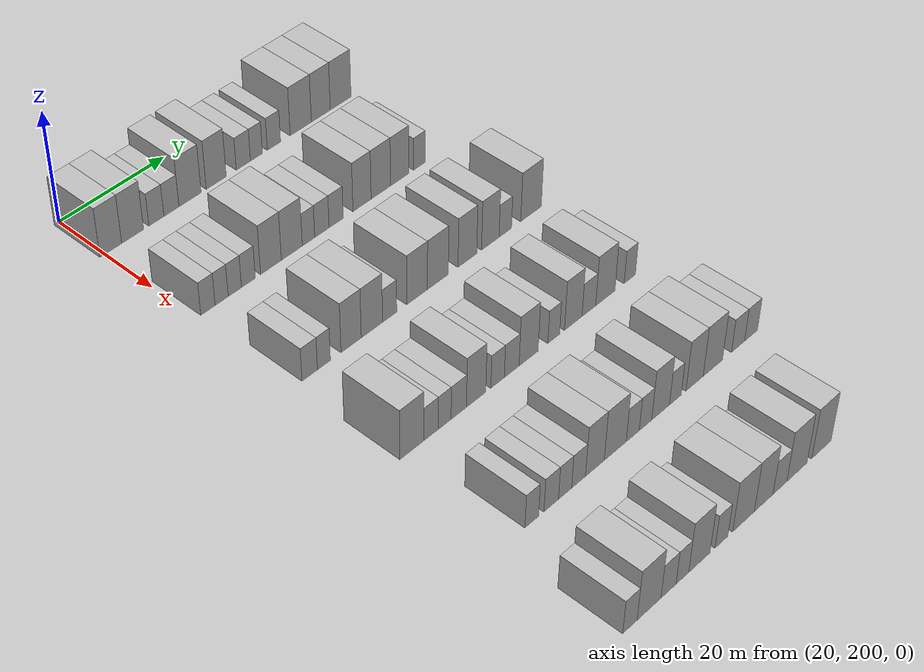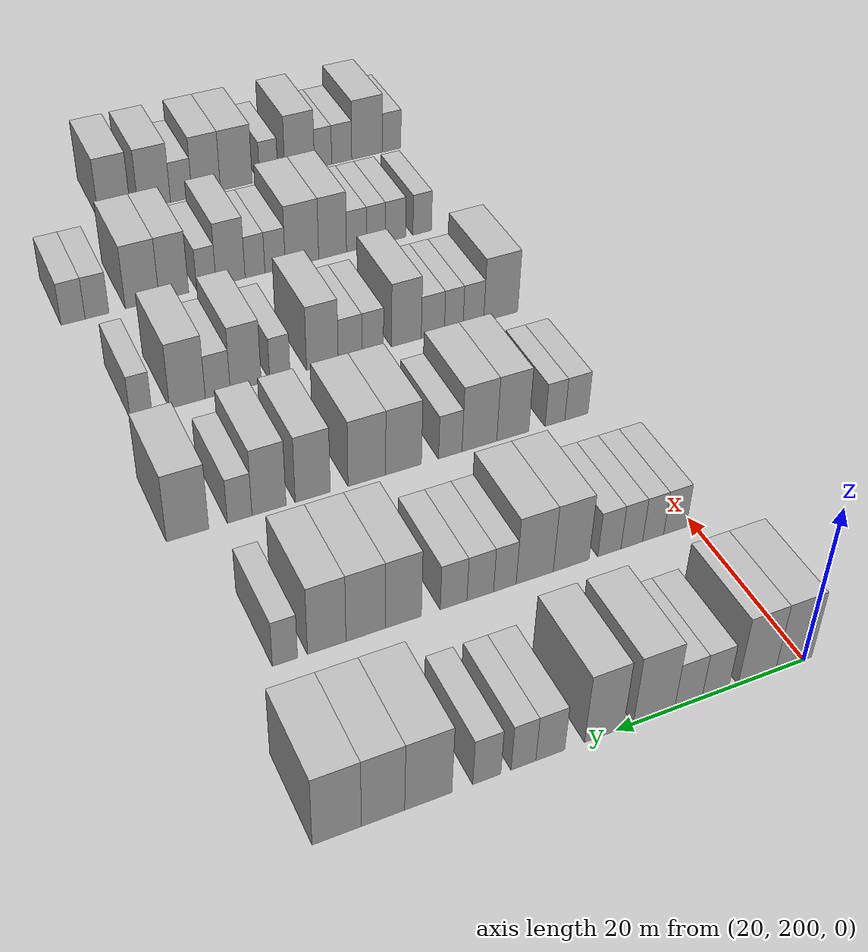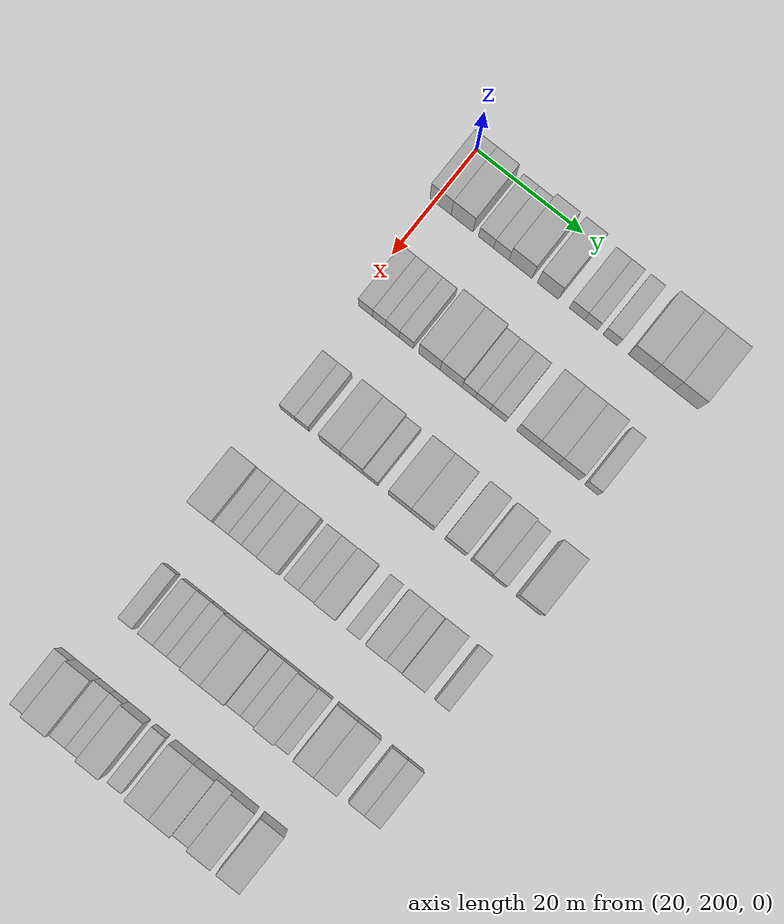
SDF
<sdf version="1.6">
 <world name="default">
  <model name="building_134">
   <static>1</static>
   <pose>25.0000 201.1107 0 0.000000 0.000000 0.000000</pose>
   <link name="link">
    <pose>0 0 4.50 0 0 0</pose>
    <collision name="collision"><geometry><box><size>10.0000 4.0052 9.0000</size></box></geometry></collision>
    <visual name="visual">
     <cast_shadows>0</cast_shadows>
     <geometry><box><size>10.0000 4.0052 9.0000</size></box></geometry>
     <material>
      <script>
       <uri>model://HANNAS_wall/materials/scripts</uri>
       <uri>model://HANNAS_wall/materials/textures</uri>
       <name>vrc/HANNAS_wall</name>
      </script>
     </material>
    </visual>
   </link>
  </model>
  <model name="building_135">
   <static>1</static>
   <pose>25.0000 205.1565 0 0.000000 0.000000 0.000000</pose>
   <link name="link">
    <pose>0 0 4.50 0 0 0</pose>
    <collision name="collision"><geometry><box><size>10.0000 4.0865 9.0000</size></box></geometry></collision>
    <visual name="visual">
     <cast_shadows>0</cast_shadows>
     <geometry><box><size>10.0000 4.0865 9.0000</size></box></geometry>
     <material>
      <script>
       <uri>model://HANNAS_wall/materials/scripts</uri>
       <uri>model://HANNAS_wall/materials/textures</uri>
       <name>vrc/HANNAS_wall</name>
      </script>
     </material>
    </visual>
   </link>
  </model>
  <model name="building_136">
   <static>1</static>
   <pose>25.0000 209.6300 0 0.000000 0.000000 0.000000</pose>
   <link name="link">
    <pose>0 0 3.00 0 0 0</pose>
    <collision name="collision"><geometry><box><size>10.0000 2.8605 6.0000</size></box></geometry></collision>
    <visual name="visual">
     <cast_shadows>0</cast_shadows>
     <geometry><box><size>10.0000 2.8605 6.0000</size></box></geometry>
     <material>
      <script>
       <uri>model://HANNAS_wall/materials/scripts</uri>
       <uri>model://HANNAS_wall/materials/textures</uri>
       <name>vrc/HANNAS_wall</name>
      </script>
     </material>
    </visual>
   </link>
  </model>
  <model name="building_137">
   <static>1</static>
   <pose>25.0000 212.5045 0 0.000000 0.000000 0.000000</pose>
   <link name="link">
    <pose>0 0 3.00 0 0 0</pose>
    <collision name="collision"><geometry><box><size>10.0000 2.8885 6.0000</size></box></geometry></collision>
    <visual name="visual">
     <cast_shadows>0</cast_shadows>
     <geometry><box><size>10.0000 2.8885 6.0000</size></box></geometry>
     <material>
      <script>
       <uri>model://HANNAS_wall/materials/scripts</uri>
       <uri>model://HANNAS_wall/materials/textures</uri>
       <name>vrc/HANNAS_wall</name>
      </script>
     </material>
    </visual>
   </link>
  </model>
  <model name="building_138">
   <static>1</static>
   <pose>25.0000 216.1002 0 0.000000 0.000000 0.000000</pose>
   <link name="link">
    <pose>0 0 4.50 0 0 0</pose>
    <collision name="collision"><geometry><box><size>10.0000 4.3030 9.0000</size></box></geometry></collision>
    <visual name="visual">
     <cast_shadows>0</cast_shadows>
     <geometry><box><size>10.0000 4.3030 9.0000</size></box></geometry>
     <material>
      <script>
       <uri>model://HANNAS_wall/materials/scripts</uri>
       <uri>model://HANNAS_wall/materials/textures</uri>
       <name>vrc/HANNAS_wall</name>
      </script>
     </material>
    </visual>
   </link>
  </model>
  <model name="building_139">
   <static>1</static>
   <pose>25.0000 221.2354 0 0.000000 0.000000 0.000000</pose>
   <link name="link">
    <pose>0 0 4.50 0 0 0</pose>
    <collision name="collision"><geometry><box><size>10.0000 3.9674 9.0000</size></box></geometry></collision>
    <visual name="visual">
     <cast_shadows>0</cast_shadows>
     <geometry><box><size>10.0000 3.9674 9.0000</size></box></geometry>
     <material>
      <script>
       <uri>model://HANNAS_wall/materials/scripts</uri>
       <uri>model://HANNAS_wall/materials/textures</uri>
       <name>vrc/HANNAS_wall</name>
      </script>
     </material>
    </visual>
   </link>
  </model>
  <model name="building_140">
   <static>1</static>
   <pose>25.0000 226.6576 0 0.000000 0.000000 0.000000</pose>
   <link name="link">
    <pose>0 0 3.00 0 0 0</pose>
    <collision name="collision"><geometry><box><size>10.0000 2.8771 6.0000</size></box></geometry></collision>
    <visual name="visual">
     <cast_shadows>0</cast_shadows>
     <geometry><box><size>10.0000 2.8771 6.0000</size></box></geometry>
     <material>
      <script>
       <uri>model://HANNAS_wall/materials/scripts</uri>
       <uri>model://HANNAS_wall/materials/textures</uri>
       <name>vrc/HANNAS_wall</name>
      </script>
     </material>
    </visual>
   </link>
  </model>
  <model name="building_141">
   <static>1</static>
   <pose>25.0000 229.3124 0 0.000000 0.000000 0.000000</pose>
   <link name="link">
    <pose>0 0 3.00 0 0 0</pose>
    <collision name="collision"><geometry><box><size>10.0000 2.4325 6.0000</size></box></geometry></collision>
    <visual name="visual">
     <cast_shadows>0</cast_shadows>
     <geometry><box><size>10.0000 2.4325 6.0000</size></box></geometry>
     <material>
      <script>
       <uri>model://HANNAS_wall/materials/scripts</uri>
       <uri>model://HANNAS_wall/materials/textures</uri>
       <name>vrc/HANNAS_wall</name>
      </script>
     </material>
    </visual>
   </link>
  </model>
  <model name="building_142">
   <static>1</static>
   <pose>25.0000 232.8880 0 0.000000 0.000000 0.000000</pose>
   <link name="link">
    <pose>0 0 3.00 0 0 0</pose>
    <collision name="collision"><geometry><box><size>10.0000 2.7187 6.0000</size></box></geometry></collision>
    <visual name="visual">
     <cast_shadows>0</cast_shadows>
     <geometry><box><size>10.0000 2.7187 6.0000</size></box></geometry>
     <material>
      <script>
       <uri>model://HANNAS_wall/materials/scripts</uri>
       <uri>model://HANNAS_wall/materials/textures</uri>
       <name>vrc/HANNAS_wall</name>
      </script>
     </material>
    </visual>
   </link>
  </model>
  <model name="building_143">
   <static>1</static>
   <pose>25.0000 238.4745 0 0.000000 0.000000 0.000000</pose>
   <link name="link">
    <pose>0 0 4.50 0 0 0</pose>
    <collision name="collision"><geometry><box><size>10.0000 4.4542 9.0000</size></box></geometry></collision>
    <visual name="visual">
     <cast_shadows>0</cast_shadows>
     <geometry><box><size>10.0000 4.4542 9.0000</size></box></geometry>
     <material>
      <script>
       <uri>model://HANNAS_wall/materials/scripts</uri>
       <uri>model://HANNAS_wall/materials/textures</uri>
       <name>vrc/HANNAS_wall</name>
      </script>
     </material>
    </visual>
   </link>
  </model>
  <model name="building_144">
   <static>1</static>
   <pose>25.0000 242.7126 0 0.000000 0.000000 0.000000</pose>
   <link name="link">
    <pose>0 0 4.50 0 0 0</pose>
    <collision name="collision"><geometry><box><size>10.0000 4.0220 9.0000</size></box></geometry></collision>
    <visual name="visual">
     <cast_shadows>0</cast_shadows>
     <geometry><box><size>10.0000 4.0220 9.0000</size></box></geometry>
     <material>
      <script>
       <uri>model://HANNAS_wall/materials/scripts</uri>
       <uri>model://HANNAS_wall/materials/textures</uri>
       <name>vrc/HANNAS_wall</name>
      </script>
     </material>
    </visual>
   </link>
  </model>
  <model name="building_145">
   <static>1</static>
   <pose>25.0000 246.9584 0 0.000000 0.000000 0.000000</pose>
   <link name="link">
    <pose>0 0 4.50 0 0 0</pose>
    <collision name="collision"><geometry><box><size>10.0000 4.4697 9.0000</size></box></geometry></collision>
    <visual name="visual">
     <cast_shadows>0</cast_shadows>
     <geometry><box><size>10.0000 4.4697 9.0000</size></box></geometry>
     <material>
      <script>
       <uri>model://HANNAS_wall/materials/scripts</uri>
       <uri>model://HANNAS_wall/materials/textures</uri>
       <name>vrc/HANNAS_wall</name>
      </script>
     </material>
    </visual>
   </link>
  </model>
  <model name="building_316">
   <static>1</static>
   <pose>44.0000 202.1869 0 0.000000 0.000000 0.000000</pose>
   <link name="link">
    <pose>0 0 3.00 0 0 0</pose>
    <collision name="collision"><geometry><box><size>10.0000 2.6423 6.0000</size></box></geometry></collision>
    <visual name="visual">
     <cast_shadows>0</cast_shadows>
     <geometry><box><size>10.0000 2.6423 6.0000</size></box></geometry>
     <material>
      <script>
       <uri>model://HANNAS_wall/materials/scripts</uri>
       <uri>model://HANNAS_wall/materials/textures</uri>
       <name>vrc/HANNAS_wall</name>
      </script>
     </material>
    </visual>
   </link>
  </model>
  <model name="building_317">
   <static>1</static>
   <pose>44.0000 204.7300 0 0.000000 0.000000 0.000000</pose>
   <link name="link">
    <pose>0 0 3.00 0 0 0</pose>
    <collision name="collision"><geometry><box><size>10.0000 2.4437 6.0000</size></box></geometry></collision>
    <visual name="visual">
     <cast_shadows>0</cast_shadows>
     <geometry><box><size>10.0000 2.4437 6.0000</size></box></geometry>
     <material>
      <script>
       <uri>model://HANNAS_wall/materials/scripts</uri>
       <uri>model://HANNAS_wall/materials/textures</uri>
       <name>vrc/HANNAS_wall</name>
      </script>
     </material>
    </visual>
   </link>
  </model>
  <model name="building_318">
   <static>1</static>
   <pose>44.0000 207.2030 0 0.000000 0.000000 0.000000</pose>
   <link name="link">
    <pose>0 0 3.00 0 0 0</pose>
    <collision name="collision"><geometry><box><size>10.0000 2.5024 6.0000</size></box></geometry></collision>
    <visual name="visual">
     <cast_shadows>0</cast_shadows>
     <geometry><box><size>10.0000 2.5024 6.0000</size></box></geometry>
     <material>
      <script>
       <uri>model://HANNAS_wall/materials/scripts</uri>
       <uri>model://HANNAS_wall/materials/textures</uri>
       <name>vrc/HANNAS_wall</name>
      </script>
     </material>
    </visual>
   </link>
  </model>
  <model name="building_319">
   <static>1</static>
   <pose>44.0000 209.7714 0 0.000000 0.000000 0.000000</pose>
   <link name="link">
    <pose>0 0 3.00 0 0 0</pose>
    <collision name="collision"><geometry><box><size>10.0000 2.6343 6.0000</size></box></geometry></collision>
    <visual name="visual">
     <cast_shadows>0</cast_shadows>
     <geometry><box><size>10.0000 2.6343 6.0000</size></box></geometry>
     <material>
      <script>
       <uri>model://HANNAS_wall/materials/scripts</uri>
       <uri>model://HANNAS_wall/materials/textures</uri>
       <name>vrc/HANNAS_wall</name>
      </script>
     </material>
    </visual>
   </link>
  </model>
  <model name="building_320">
   <static>1</static>
   <pose>44.0000 214.0950 0 0.000000 0.000000 0.000000</pose>
   <link name="link">
    <pose>0 0 4.50 0 0 0</pose>
    <collision name="collision"><geometry><box><size>10.0000 4.0131 9.0000</size></box></geometry></collision>
    <visual name="visual">
     <cast_shadows>0</cast_shadows>
     <geometry><box><size>10.0000 4.0131 9.0000</size></box></geometry>
     <material>
      <script>
       <uri>model://HANNAS_wall/materials/scripts</uri>
       <uri>model://HANNAS_wall/materials/textures</uri>
       <name>vrc/HANNAS_wall</name>
      </script>
     </material>
    </visual>
   </link>
  </model>
  <model name="building_321">
   <static>1</static>
   <pose>44.0000 218.1465 0 0.000000 0.000000 0.000000</pose>
   <link name="link">
    <pose>0 0 4.50 0 0 0</pose>
    <collision name="collision"><geometry><box><size>10.0000 4.0898 9.0000</size></box></geometry></collision>
    <visual name="visual">
     <cast_shadows>0</cast_shadows>
     <geometry><box><size>10.0000 4.0898 9.0000</size></box></geometry>
     <material>
      <script>
       <uri>model://HANNAS_wall/materials/scripts</uri>
       <uri>model://HANNAS_wall/materials/textures</uri>
       <name>vrc/HANNAS_wall</name>
      </script>
     </material>
    </visual>
   </link>
  </model>
  <model name="building_322">
   <static>1</static>
   <pose>44.0000 221.4216 0 0.000000 0.000000 0.000000</pose>
   <link name="link">
    <pose>0 0 3.00 0 0 0</pose>
    <collision name="collision"><geometry><box><size>10.0000 2.4606 6.0000</size></box></geometry></collision>
    <visual name="visual">
     <cast_shadows>0</cast_shadows>
     <geometry><box><size>10.0000 2.4606 6.0000</size></box></geometry>
     <material>
      <script>
       <uri>model://HANNAS_wall/materials/scripts</uri>
       <uri>model://HANNAS_wall/materials/textures</uri>
       <name>vrc/HANNAS_wall</name>
      </script>
     </material>
    </visual>
   </link>
  </model>
  <model name="building_323">
   <static>1</static>
   <pose>44.0000 224.0896 0 0.000000 0.000000 0.000000</pose>
   <link name="link">
    <pose>0 0 3.00 0 0 0</pose>
    <collision name="collision"><geometry><box><size>10.0000 2.8755 6.0000</size></box></geometry></collision>
    <visual name="visual">
     <cast_shadows>0</cast_shadows>
     <geometry><box><size>10.0000 2.8755 6.0000</size></box></geometry>
     <material>
      <script>
       <uri>model://HANNAS_wall/materials/scripts</uri>
       <uri>model://HANNAS_wall/materials/textures</uri>
       <name>vrc/HANNAS_wall</name>
      </script>
     </material>
    </visual>
   </link>
  </model>
  <model name="building_324">
   <static>1</static>
   <pose>44.0000 226.9483 0 0.000000 0.000000 0.000000</pose>
   <link name="link">
    <pose>0 0 3.00 0 0 0</pose>
    <collision name="collision"><geometry><box><size>10.0000 2.8420 6.0000</size></box></geometry></collision>
    <visual name="visual">
     <cast_shadows>0</cast_shadows>
     <geometry><box><size>10.0000 2.8420 6.0000</size></box></geometry>
     <material>
      <script>
       <uri>model://HANNAS_wall/materials/scripts</uri>
       <uri>model://HANNAS_wall/materials/textures</uri>
       <name>vrc/HANNAS_wall</name>
      </script>
     </material>
    </visual>
   </link>
  </model>
  <model name="building_325">
   <static>1</static>
   <pose>44.0000 232.2457 0 0.000000 0.000000 0.000000</pose>
   <link name="link">
    <pose>0 0 4.50 0 0 0</pose>
    <collision name="collision"><geometry><box><size>10.0000 3.7527 9.0000</size></box></geometry></collision>
    <visual name="visual">
     <cast_shadows>0</cast_shadows>
     <geometry><box><size>10.0000 3.7527 9.0000</size></box></geometry>
     <material>
      <script>
       <uri>model://HANNAS_wall/materials/scripts</uri>
       <uri>model://HANNAS_wall/materials/textures</uri>
       <name>vrc/HANNAS_wall</name>
      </script>
     </material>
    </visual>
   </link>
  </model>
  <model name="building_326">
   <static>1</static>
   <pose>44.0000 236.1466 0 0.000000 0.000000 0.000000</pose>
   <link name="link">
    <pose>0 0 4.50 0 0 0</pose>
    <collision name="collision"><geometry><box><size>10.0000 4.0490 9.0000</size></box></geometry></collision>
    <visual name="visual">
     <cast_shadows>0</cast_shadows>
     <geometry><box><size>10.0000 4.0490 9.0000</size></box></geometry>
     <material>
      <script>
       <uri>model://HANNAS_wall/materials/scripts</uri>
       <uri>model://HANNAS_wall/materials/textures</uri>
       <name>vrc/HANNAS_wall</name>
      </script>
     </material>
    </visual>
   </link>
  </model>
  <model name="building_327">
   <static>1</static>
   <pose>44.0000 240.1124 0 0.000000 0.000000 0.000000</pose>
   <link name="link">
    <pose>0 0 4.50 0 0 0</pose>
    <collision name="collision"><geometry><box><size>10.0000 3.8828 9.0000</size></box></geometry></collision>
    <visual name="visual">
     <cast_shadows>0</cast_shadows>
     <geometry><box><size>10.0000 3.8828 9.0000</size></box></geometry>
     <material>
      <script>
       <uri>model://HANNAS_wall/materials/scripts</uri>
       <uri>model://HANNAS_wall/materials/textures</uri>
       <name>vrc/HANNAS_wall</name>
      </script>
     </material>
    </visual>
   </link>
  </model>
  <model name="building_328">
   <static>1</static>
   <pose>44.0000 244.3037 0 0.000000 0.000000 0.000000</pose>
   <link name="link">
    <pose>0 0 3.00 0 0 0</pose>
    <collision name="collision"><geometry><box><size>10.0000 2.4998 6.0000</size></box></geometry></collision>
    <visual name="visual">
     <cast_shadows>0</cast_shadows>
     <geometry><box><size>10.0000 2.4998 6.0000</size></box></geometry>
     <material>
      <script>
       <uri>model://HANNAS_wall/materials/scripts</uri>
       <uri>model://HANNAS_wall/materials/textures</uri>
       <name>vrc/HANNAS_wall</name>
      </script>
     </material>
    </visual>
   </link>
  </model>
  <model name="building_483">
   <static>1</static>
   <pose>63.0000 202.9720 0 0.000000 0.000000 0.000000</pose>
   <link name="link">
    <pose>0 0 3.00 0 0 0</pose>
    <collision name="collision"><geometry><box><size>10.0000 2.8679 6.0000</size></box></geometry></collision>
    <visual name="visual">
     <cast_shadows>0</cast_shadows>
     <geometry><box><size>10.0000 2.8679 6.0000</size></box></geometry>
     <material>
      <script>
       <uri>model://HANNAS_wall/materials/scripts</uri>
       <uri>model://HANNAS_wall/materials/textures</uri>
       <name>vrc/HANNAS_wall</name>
      </script>
     </material>
    </visual>
   </link>
  </model>
  <model name="building_484">
   <static>1</static>
   <pose>63.0000 205.6185 0 0.000000 0.000000 0.000000</pose>
   <link name="link">
    <pose>0 0 3.00 0 0 0</pose>
    <collision name="collision"><geometry><box><size>10.0000 2.4251 6.0000</size></box></geometry></collision>
    <visual name="visual">
     <cast_shadows>0</cast_shadows>
     <geometry><box><size>10.0000 2.4251 6.0000</size></box></geometry>
     <material>
      <script>
       <uri>model://HANNAS_wall/materials/scripts</uri>
       <uri>model://HANNAS_wall/materials/textures</uri>
       <name>vrc/HANNAS_wall</name>
      </script>
     </material>
    </visual>
   </link>
  </model>
  <model name="building_485">
   <static>1</static>
   <pose>63.0000 210.7615 0 0.000000 0.000000 0.000000</pose>
   <link name="link">
    <pose>0 0 4.50 0 0 0</pose>
    <collision name="collision"><geometry><box><size>10.0000 3.8608 9.0000</size></box></geometry></collision>
    <visual name="visual">
     <cast_shadows>0</cast_shadows>
     <geometry><box><size>10.0000 3.8608 9.0000</size></box></geometry>
     <material>
      <script>
       <uri>model://HANNAS_wall/materials/scripts</uri>
       <uri>model://HANNAS_wall/materials/textures</uri>
       <name>vrc/HANNAS_wall</name>
      </script>
     </material>
    </visual>
   </link>
  </model>
  <model name="building_486">
   <static>1</static>
   <pose>63.0000 214.7642 0 0.000000 0.000000 0.000000</pose>
   <link name="link">
    <pose>0 0 4.50 0 0 0</pose>
    <collision name="collision"><geometry><box><size>10.0000 4.1446 9.0000</size></box></geometry></collision>
    <visual name="visual">
     <cast_shadows>0</cast_shadows>
     <geometry><box><size>10.0000 4.1446 9.0000</size></box></geometry>
     <material>
      <script>
       <uri>model://HANNAS_wall/materials/scripts</uri>
       <uri>model://HANNAS_wall/materials/textures</uri>
       <name>vrc/HANNAS_wall</name>
      </script>
     </material>
    </visual>
   </link>
  </model>
  <model name="building_487">
   <static>1</static>
   <pose>63.0000 218.2163 0 0.000000 0.000000 0.000000</pose>
   <link name="link">
    <pose>0 0 3.00 0 0 0</pose>
    <collision name="collision"><geometry><box><size>10.0000 2.7595 6.0000</size></box></geometry></collision>
    <visual name="visual">
     <cast_shadows>0</cast_shadows>
     <geometry><box><size>10.0000 2.7595 6.0000</size></box></geometry>
     <material>
      <script>
       <uri>model://HANNAS_wall/materials/scripts</uri>
       <uri>model://HANNAS_wall/materials/textures</uri>
       <name>vrc/HANNAS_wall</name>
      </script>
     </material>
    </visual>
   </link>
  </model>
  <model name="building_488">
   <static>1</static>
   <pose>63.0000 223.6591 0 0.000000 0.000000 0.000000</pose>
   <link name="link">
    <pose>0 0 4.50 0 0 0</pose>
    <collision name="collision"><geometry><box><size>10.0000 4.1260 9.0000</size></box></geometry></collision>
    <visual name="visual">
     <cast_shadows>0</cast_shadows>
     <geometry><box><size>10.0000 4.1260 9.0000</size></box></geometry>
     <material>
      <script>
       <uri>model://HANNAS_wall/materials/scripts</uri>
       <uri>model://HANNAS_wall/materials/textures</uri>
       <name>vrc/HANNAS_wall</name>
      </script>
     </material>
    </visual>
   </link>
  </model>
  <model name="building_489">
   <static>1</static>
   <pose>63.0000 227.8525 0 0.000000 0.000000 0.000000</pose>
   <link name="link">
    <pose>0 0 4.50 0 0 0</pose>
    <collision name="collision"><geometry><box><size>10.0000 4.2610 9.0000</size></box></geometry></collision>
    <visual name="visual">
     <cast_shadows>0</cast_shadows>
     <geometry><box><size>10.0000 4.2610 9.0000</size></box></geometry>
     <material>
      <script>
       <uri>model://HANNAS_wall/materials/scripts</uri>
       <uri>model://HANNAS_wall/materials/textures</uri>
       <name>vrc/HANNAS_wall</name>
      </script>
     </material>
    </visual>
   </link>
  </model>
  <model name="building_490">
   <static>1</static>
   <pose>63.0000 233.9294 0 0.000000 0.000000 0.000000</pose>
   <link name="link">
    <pose>0 0 4.50 0 0 0</pose>
    <collision name="collision"><geometry><box><size>10.0000 3.8927 9.0000</size></box></geometry></collision>
    <visual name="visual">
     <cast_shadows>0</cast_shadows>
     <geometry><box><size>10.0000 3.8927 9.0000</size></box></geometry>
     <material>
      <script>
       <uri>model://HANNAS_wall/materials/scripts</uri>
       <uri>model://HANNAS_wall/materials/textures</uri>
       <name>vrc/HANNAS_wall</name>
      </script>
     </material>
    </visual>
   </link>
  </model>
  <model name="building_491">
   <static>1</static>
   <pose>63.0000 238.7352 0 0.000000 0.000000 0.000000</pose>
   <link name="link">
    <pose>0 0 4.50 0 0 0</pose>
    <collision name="collision"><geometry><box><size>10.0000 3.7189 9.0000</size></box></geometry></collision>
    <visual name="visual">
     <cast_shadows>0</cast_shadows>
     <geometry><box><size>10.0000 3.7189 9.0000</size></box></geometry>
     <material>
      <script>
       <uri>model://HANNAS_wall/materials/scripts</uri>
       <uri>model://HANNAS_wall/materials/textures</uri>
       <name>vrc/HANNAS_wall</name>
      </script>
     </material>
    </visual>
   </link>
  </model>
  <model name="building_492">
   <static>1</static>
   <pose>63.0000 241.9207 0 0.000000 0.000000 0.000000</pose>
   <link name="link">
    <pose>0 0 3.00 0 0 0</pose>
    <collision name="collision"><geometry><box><size>10.0000 2.6520 6.0000</size></box></geometry></collision>
    <visual name="visual">
     <cast_shadows>0</cast_shadows>
     <geometry><box><size>10.0000 2.6520 6.0000</size></box></geometry>
     <material>
      <script>
       <uri>model://HANNAS_wall/materials/scripts</uri>
       <uri>model://HANNAS_wall/materials/textures</uri>
       <name>vrc/HANNAS_wall</name>
      </script>
     </material>
    </visual>
   </link>
  </model>
  <model name="building_493">
   <static>1</static>
   <pose>63.0000 247.4872 0 0.000000 0.000000 0.000000</pose>
   <link name="link">
    <pose>0 0 4.50 0 0 0</pose>
    <collision name="collision"><geometry><box><size>10.0000 4.4810 9.0000</size></box></geometry></collision>
    <visual name="visual">
     <cast_shadows>0</cast_shadows>
     <geometry><box><size>10.0000 4.4810 9.0000</size></box></geometry>
     <material>
      <script>
       <uri>model://HANNAS_wall/materials/scripts</uri>
       <uri>model://HANNAS_wall/materials/textures</uri>
       <name>vrc/HANNAS_wall</name>
      </script>
     </material>
    </visual>
   </link>
  </model>
  <model name="building_662">
   <static>1</static>
   <pose>82.0000 202.5556 0 0.000000 0.000000 0.000000</pose>
   <link name="link">
    <pose>0 0 4.50 0 0 0</pose>
    <collision name="collision"><geometry><box><size>10.0000 4.4766 9.0000</size></box></geometry></collision>
    <visual name="visual">
     <cast_shadows>0</cast_shadows>
     <geometry><box><size>10.0000 4.4766 9.0000</size></box></geometry>
     <material>
      <script>
       <uri>model://HANNAS_wall/materials/scripts</uri>
       <uri>model://HANNAS_wall/materials/textures</uri>
       <name>vrc/HANNAS_wall</name>
      </script>
     </material>
    </visual>
   </link>
  </model>
  <model name="building_663">
   <static>1</static>
   <pose>82.0000 206.1378 0 0.000000 0.000000 0.000000</pose>
   <link name="link">
    <pose>0 0 3.00 0 0 0</pose>
    <collision name="collision"><geometry><box><size>10.0000 2.6879 6.0000</size></box></geometry></collision>
    <visual name="visual">
     <cast_shadows>0</cast_shadows>
     <geometry><box><size>10.0000 2.6879 6.0000</size></box></geometry>
     <material>
      <script>
       <uri>model://HANNAS_wall/materials/scripts</uri>
       <uri>model://HANNAS_wall/materials/textures</uri>
       <name>vrc/HANNAS_wall</name>
      </script>
     </material>
    </visual>
   </link>
  </model>
  <model name="building_664">
   <static>1</static>
   <pose>82.0000 208.6855 0 0.000000 0.000000 0.000000</pose>
   <link name="link">
    <pose>0 0 3.00 0 0 0</pose>
    <collision name="collision"><geometry><box><size>10.0000 2.4075 6.0000</size></box></geometry></collision>
    <visual name="visual">
     <cast_shadows>0</cast_shadows>
     <geometry><box><size>10.0000 2.4075 6.0000</size></box></geometry>
     <material>
      <script>
       <uri>model://HANNAS_wall/materials/scripts</uri>
       <uri>model://HANNAS_wall/materials/textures</uri>
       <name>vrc/HANNAS_wall</name>
      </script>
     </material>
    </visual>
   </link>
  </model>
  <model name="building_665">
   <static>1</static>
   <pose>82.0000 211.3678 0 0.000000 0.000000 0.000000</pose>
   <link name="link">
    <pose>0 0 3.00 0 0 0</pose>
    <collision name="collision"><geometry><box><size>10.0000 2.9570 6.0000</size></box></geometry></collision>
    <visual name="visual">
     <cast_shadows>0</cast_shadows>
     <geometry><box><size>10.0000 2.9570 6.0000</size></box></geometry>
     <material>
      <script>
       <uri>model://HANNAS_wall/materials/scripts</uri>
       <uri>model://HANNAS_wall/materials/textures</uri>
       <name>vrc/HANNAS_wall</name>
      </script>
     </material>
    </visual>
   </link>
  </model>
  <model name="building_666">
   <static>1</static>
   <pose>82.0000 214.7285 0 0.000000 0.000000 0.000000</pose>
   <link name="link">
    <pose>0 0 4.50 0 0 0</pose>
    <collision name="collision"><geometry><box><size>10.0000 3.7644 9.0000</size></box></geometry></collision>
    <visual name="visual">
     <cast_shadows>0</cast_shadows>
     <geometry><box><size>10.0000 3.7644 9.0000</size></box></geometry>
     <material>
      <script>
       <uri>model://HANNAS_wall/materials/scripts</uri>
       <uri>model://HANNAS_wall/materials/textures</uri>
       <name>vrc/HANNAS_wall</name>
      </script>
     </material>
    </visual>
   </link>
  </model>
  <model name="building_667">
   <static>1</static>
   <pose>82.0000 218.9458 0 0.000000 0.000000 0.000000</pose>
   <link name="link">
    <pose>0 0 3.00 0 0 0</pose>
    <collision name="collision"><geometry><box><size>10.0000 2.6701 6.0000</size></box></geometry></collision>
    <visual name="visual">
     <cast_shadows>0</cast_shadows>
     <geometry><box><size>10.0000 2.6701 6.0000</size></box></geometry>
     <material>
      <script>
       <uri>model://HANNAS_wall/materials/scripts</uri>
       <uri>model://HANNAS_wall/materials/textures</uri>
       <name>vrc/HANNAS_wall</name>
      </script>
     </material>
    </visual>
   </link>
  </model>
  <model name="building_668">
   <static>1</static>
   <pose>82.0000 221.7533 0 0.000000 0.000000 0.000000</pose>
   <link name="link">
    <pose>0 0 3.00 0 0 0</pose>
    <collision name="collision"><geometry><box><size>10.0000 2.9449 6.0000</size></box></geometry></collision>
    <visual name="visual">
     <cast_shadows>0</cast_shadows>
     <geometry><box><size>10.0000 2.9449 6.0000</size></box></geometry>
     <material>
      <script>
       <uri>model://HANNAS_wall/materials/scripts</uri>
       <uri>model://HANNAS_wall/materials/textures</uri>
       <name>vrc/HANNAS_wall</name>
      </script>
     </material>
    </visual>
   </link>
  </model>
  <model name="building_669">
   <static>1</static>
   <pose>82.0000 225.1556 0 0.000000 0.000000 0.000000</pose>
   <link name="link">
    <pose>0 0 4.50 0 0 0</pose>
    <collision name="collision"><geometry><box><size>10.0000 3.8596 9.0000</size></box></geometry></collision>
    <visual name="visual">
     <cast_shadows>0</cast_shadows>
     <geometry><box><size>10.0000 3.8596 9.0000</size></box></geometry>
     <material>
      <script>
       <uri>model://HANNAS_wall/materials/scripts</uri>
       <uri>model://HANNAS_wall/materials/textures</uri>
       <name>vrc/HANNAS_wall</name>
      </script>
     </material>
    </visual>
   </link>
  </model>
  <model name="building_670">
   <static>1</static>
   <pose>82.0000 230.3033 0 0.000000 0.000000 0.000000</pose>
   <link name="link">
    <pose>0 0 3.00 0 0 0</pose>
    <collision name="collision"><geometry><box><size>10.0000 2.4358 6.0000</size></box></geometry></collision>
    <visual name="visual">
     <cast_shadows>0</cast_shadows>
     <geometry><box><size>10.0000 2.4358 6.0000</size></box></geometry>
     <material>
      <script>
       <uri>model://HANNAS_wall/materials/scripts</uri>
       <uri>model://HANNAS_wall/materials/textures</uri>
       <name>vrc/HANNAS_wall</name>
      </script>
     </material>
    </visual>
   </link>
  </model>
  <model name="building_671">
   <static>1</static>
   <pose>82.0000 234.3589 0 0.000000 0.000000 0.000000</pose>
   <link name="link">
    <pose>0 0 4.50 0 0 0</pose>
    <collision name="collision"><geometry><box><size>10.0000 3.6753 9.0000</size></box></geometry></collision>
    <visual name="visual">
     <cast_shadows>0</cast_shadows>
     <geometry><box><size>10.0000 3.6753 9.0000</size></box></geometry>
     <material>
      <script>
       <uri>model://HANNAS_wall/materials/scripts</uri>
       <uri>model://HANNAS_wall/materials/textures</uri>
       <name>vrc/HANNAS_wall</name>
      </script>
     </material>
    </visual>
   </link>
  </model>
  <model name="building_672">
   <static>1</static>
   <pose>82.0000 237.6596 0 0.000000 0.000000 0.000000</pose>
   <link name="link">
    <pose>0 0 3.00 0 0 0</pose>
    <collision name="collision"><geometry><box><size>10.0000 2.9262 6.0000</size></box></geometry></collision>
    <visual name="visual">
     <cast_shadows>0</cast_shadows>
     <geometry><box><size>10.0000 2.9262 6.0000</size></box></geometry>
     <material>
      <script>
       <uri>model://HANNAS_wall/materials/scripts</uri>
       <uri>model://HANNAS_wall/materials/textures</uri>
       <name>vrc/HANNAS_wall</name>
      </script>
     </material>
    </visual>
   </link>
  </model>
  <model name="building_673">
   <static>1</static>
   <pose>82.0000 241.1919 0 0.000000 0.000000 0.000000</pose>
   <link name="link">
    <pose>0 0 4.50 0 0 0</pose>
    <collision name="collision"><geometry><box><size>10.0000 4.1384 9.0000</size></box></geometry></collision>
    <visual name="visual">
     <cast_shadows>0</cast_shadows>
     <geometry><box><size>10.0000 4.1384 9.0000</size></box></geometry>
     <material>
      <script>
       <uri>model://HANNAS_wall/materials/scripts</uri>
       <uri>model://HANNAS_wall/materials/textures</uri>
       <name>vrc/HANNAS_wall</name>
      </script>
     </material>
    </visual>
   </link>
  </model>
  <model name="building_674">
   <static>1</static>
   <pose>82.0000 246.4965 0 0.000000 0.000000 0.000000</pose>
   <link name="link">
    <pose>0 0 3.00 0 0 0</pose>
    <collision name="collision"><geometry><box><size>10.0000 2.4709 6.0000</size></box></geometry></collision>
    <visual name="visual">
     <cast_shadows>0</cast_shadows>
     <geometry><box><size>10.0000 2.4709 6.0000</size></box></geometry>
     <material>
      <script>
       <uri>model://HANNAS_wall/materials/scripts</uri>
       <uri>model://HANNAS_wall/materials/textures</uri>
       <name>vrc/HANNAS_wall</name>
      </script>
     </material>
    </visual>
   </link>
  </model>
  <model name="building_836">
   <static>1</static>
   <pose>101.0000 203.9540 0 0.000000 0.000000 0.000000</pose>
   <link name="link">
    <pose>0 0 3.00 0 0 0</pose>
    <collision name="collision"><geometry><box><size>10.0000 2.5580 6.0000</size></box></geometry></collision>
    <visual name="visual">
     <cast_shadows>0</cast_shadows>
     <geometry><box><size>10.0000 2.5580 6.0000</size></box></geometry>
     <material>
      <script>
       <uri>model://HANNAS_wall/materials/scripts</uri>
       <uri>model://HANNAS_wall/materials/textures</uri>
       <name>vrc/HANNAS_wall</name>
      </script>
     </material>
    </visual>
   </link>
  </model>
  <model name="building_837">
   <static>1</static>
   <pose>101.0000 207.6255 0 0.000000 0.000000 0.000000</pose>
   <link name="link">
    <pose>0 0 3.00 0 0 0</pose>
    <collision name="collision"><geometry><box><size>10.0000 2.7850 6.0000</size></box></geometry></collision>
    <visual name="visual">
     <cast_shadows>0</cast_shadows>
     <geometry><box><size>10.0000 2.7850 6.0000</size></box></geometry>
     <material>
      <script>
       <uri>model://HANNAS_wall/materials/scripts</uri>
       <uri>model://HANNAS_wall/materials/textures</uri>
       <name>vrc/HANNAS_wall</name>
      </script>
     </material>
    </visual>
   </link>
  </model>
  <model name="building_838">
   <static>1</static>
   <pose>101.0000 210.2875 0 0.000000 0.000000 0.000000</pose>
   <link name="link">
    <pose>0 0 3.00 0 0 0</pose>
    <collision name="collision"><geometry><box><size>10.0000 2.5391 6.0000</size></box></geometry></collision>
    <visual name="visual">
     <cast_shadows>0</cast_shadows>
     <geometry><box><size>10.0000 2.5391 6.0000</size></box></geometry>
     <material>
      <script>
       <uri>model://HANNAS_wall/materials/scripts</uri>
       <uri>model://HANNAS_wall/materials/textures</uri>
       <name>vrc/HANNAS_wall</name>
      </script>
     </material>
    </visual>
   </link>
  </model>
  <model name="building_839">
   <static>1</static>
   <pose>101.0000 212.9054 0 0.000000 0.000000 0.000000</pose>
   <link name="link">
    <pose>0 0 3.00 0 0 0</pose>
    <collision name="collision"><geometry><box><size>10.0000 2.6966 6.0000</size></box></geometry></collision>
    <visual name="visual">
     <cast_shadows>0</cast_shadows>
     <geometry><box><size>10.0000 2.6966 6.0000</size></box></geometry>
     <material>
      <script>
       <uri>model://HANNAS_wall/materials/scripts</uri>
       <uri>model://HANNAS_wall/materials/textures</uri>
       <name>vrc/HANNAS_wall</name>
      </script>
     </material>
    </visual>
   </link>
  </model>
  <model name="building_840">
   <static>1</static>
   <pose>101.0000 216.1073 0 0.000000 0.000000 0.000000</pose>
   <link name="link">
    <pose>0 0 4.50 0 0 0</pose>
    <collision name="collision"><geometry><box><size>10.0000 3.7071 9.0000</size></box></geometry></collision>
    <visual name="visual">
     <cast_shadows>0</cast_shadows>
     <geometry><box><size>10.0000 3.7071 9.0000</size></box></geometry>
     <material>
      <script>
       <uri>model://HANNAS_wall/materials/scripts</uri>
       <uri>model://HANNAS_wall/materials/textures</uri>
       <name>vrc/HANNAS_wall</name>
      </script>
     </material>
    </visual>
   </link>
  </model>
  <model name="building_841">
   <static>1</static>
   <pose>101.0000 220.1549 0 0.000000 0.000000 0.000000</pose>
   <link name="link">
    <pose>0 0 4.50 0 0 0</pose>
    <collision name="collision"><geometry><box><size>10.0000 4.3882 9.0000</size></box></geometry></collision>
    <visual name="visual">
     <cast_shadows>0</cast_shadows>
     <geometry><box><size>10.0000 4.3882 9.0000</size></box></geometry>
     <material>
      <script>
       <uri>model://HANNAS_wall/materials/scripts</uri>
       <uri>model://HANNAS_wall/materials/textures</uri>
       <name>vrc/HANNAS_wall</name>
      </script>
     </material>
    </visual>
   </link>
  </model>
  <model name="building_842">
   <static>1</static>
   <pose>101.0000 223.6773 0 0.000000 0.000000 0.000000</pose>
   <link name="link">
    <pose>0 0 3.00 0 0 0</pose>
    <collision name="collision"><geometry><box><size>10.0000 2.6567 6.0000</size></box></geometry></collision>
    <visual name="visual">
     <cast_shadows>0</cast_shadows>
     <geometry><box><size>10.0000 2.6567 6.0000</size></box></geometry>
     <material>
      <script>
       <uri>model://HANNAS_wall/materials/scripts</uri>
       <uri>model://HANNAS_wall/materials/textures</uri>
       <name>vrc/HANNAS_wall</name>
      </script>
     </material>
    </visual>
   </link>
  </model>
  <model name="building_843">
   <static>1</static>
   <pose>101.0000 226.2860 0 0.000000 0.000000 0.000000</pose>
   <link name="link">
    <pose>0 0 3.00 0 0 0</pose>
    <collision name="collision"><geometry><box><size>10.0000 2.5607 6.0000</size></box></geometry></collision>
    <visual name="visual">
     <cast_shadows>0</cast_shadows>
     <geometry><box><size>10.0000 2.5607 6.0000</size></box></geometry>
     <material>
      <script>
       <uri>model://HANNAS_wall/materials/scripts</uri>
       <uri>model://HANNAS_wall/materials/textures</uri>
       <name>vrc/HANNAS_wall</name>
      </script>
     </material>
    </visual>
   </link>
  </model>
  <model name="building_844">
   <static>1</static>
   <pose>101.0000 229.4174 0 0.000000 0.000000 0.000000</pose>
   <link name="link">
    <pose>0 0 4.50 0 0 0</pose>
    <collision name="collision"><geometry><box><size>10.0000 3.7021 9.0000</size></box></geometry></collision>
    <visual name="visual">
     <cast_shadows>0</cast_shadows>
     <geometry><box><size>10.0000 3.7021 9.0000</size></box></geometry>
     <material>
      <script>
       <uri>model://HANNAS_wall/materials/scripts</uri>
       <uri>model://HANNAS_wall/materials/textures</uri>
       <name>vrc/HANNAS_wall</name>
      </script>
     </material>
    </visual>
   </link>
  </model>
  <model name="building_845">
   <static>1</static>
   <pose>101.0000 232.5018 0 0.000000 0.000000 0.000000</pose>
   <link name="link">
    <pose>0 0 3.00 0 0 0</pose>
    <collision name="collision"><geometry><box><size>10.0000 2.4668 6.0000</size></box></geometry></collision>
    <visual name="visual">
     <cast_shadows>0</cast_shadows>
     <geometry><box><size>10.0000 2.4668 6.0000</size></box></geometry>
     <material>
      <script>
       <uri>model://HANNAS_wall/materials/scripts</uri>
       <uri>model://HANNAS_wall/materials/textures</uri>
       <name>vrc/HANNAS_wall</name>
      </script>
     </material>
    </visual>
   </link>
  </model>
  <model name="building_846">
   <static>1</static>
   <pose>101.0000 236.5804 0 0.000000 0.000000 0.000000</pose>
   <link name="link">
    <pose>0 0 4.50 0 0 0</pose>
    <collision name="collision"><geometry><box><size>10.0000 3.6904 9.0000</size></box></geometry></collision>
    <visual name="visual">
     <cast_shadows>0</cast_shadows>
     <geometry><box><size>10.0000 3.6904 9.0000</size></box></geometry>
     <material>
      <script>
       <uri>model://HANNAS_wall/materials/scripts</uri>
       <uri>model://HANNAS_wall/materials/textures</uri>
       <name>vrc/HANNAS_wall</name>
      </script>
     </material>
    </visual>
   </link>
  </model>
  <model name="building_847">
   <static>1</static>
   <pose>101.0000 240.5176 0 0.000000 0.000000 0.000000</pose>
   <link name="link">
    <pose>0 0 4.50 0 0 0</pose>
    <collision name="collision"><geometry><box><size>10.0000 4.1839 9.0000</size></box></geometry></collision>
    <visual name="visual">
     <cast_shadows>0</cast_shadows>
     <geometry><box><size>10.0000 4.1839 9.0000</size></box></geometry>
     <material>
      <script>
       <uri>model://HANNAS_wall/materials/scripts</uri>
       <uri>model://HANNAS_wall/materials/textures</uri>
       <name>vrc/HANNAS_wall</name>
      </script>
     </material>
    </visual>
   </link>
  </model>
  <model name="building_848">
   <static>1</static>
   <pose>101.0000 246.0503 0 0.000000 0.000000 0.000000</pose>
   <link name="link">
    <pose>0 0 3.00 0 0 0</pose>
    <collision name="collision"><geometry><box><size>10.0000 2.8815 6.0000</size></box></geometry></collision>
    <visual name="visual">
     <cast_shadows>0</cast_shadows>
     <geometry><box><size>10.0000 2.8815 6.0000</size></box></geometry>
     <material>
      <script>
       <uri>model://HANNAS_wall/materials/scripts</uri>
       <uri>model://HANNAS_wall/materials/textures</uri>
       <name>vrc/HANNAS_wall</name>
      </script>
     </material>
    </visual>
   </link>
  </model>
  <model name="building_849">
   <static>1</static>
   <pose>101.0000 248.9424 0 0.000000 0.000000 0.000000</pose>
   <link name="link">
    <pose>0 0 3.00 0 0 0</pose>
    <collision name="collision"><geometry><box><size>10.0000 2.9027 6.0000</size></box></geometry></collision>
    <visual name="visual">
     <cast_shadows>0</cast_shadows>
     <geometry><box><size>10.0000 2.9027 6.0000</size></box></geometry>
     <material>
      <script>
       <uri>model://HANNAS_wall/materials/scripts</uri>
       <uri>model://HANNAS_wall/materials/textures</uri>
       <name>vrc/HANNAS_wall</name>
      </script>
     </material>
    </visual>
   </link>
  </model>
  <model name="building_1002">
   <static>1</static>
   <pose>120.0000 199.6981 0 0.000000 0.000000 0.000000</pose>
   <link name="link">
    <pose>0 0 3.00 0 0 0</pose>
    <collision name="collision"><geometry><box><size>10.0000 2.6841 6.0000</size></box></geometry></collision>
    <visual name="visual">
     <cast_shadows>0</cast_shadows>
     <geometry><box><size>10.0000 2.6841 6.0000</size></box></geometry>
     <material>
      <script>
       <uri>model://HANNAS_wall/materials/scripts</uri>
       <uri>model://HANNAS_wall/materials/textures</uri>
       <name>vrc/HANNAS_wall</name>
      </script>
     </material>
    </visual>
   </link>
  </model>
  <model name="building_1003">
   <static>1</static>
   <pose>120.0000 203.2892 0 0.000000 0.000000 0.000000</pose>
   <link name="link">
    <pose>0 0 4.50 0 0 0</pose>
    <collision name="collision"><geometry><box><size>10.0000 4.4982 9.0000</size></box></geometry></collision>
    <visual name="visual">
     <cast_shadows>0</cast_shadows>
     <geometry><box><size>10.0000 4.4982 9.0000</size></box></geometry>
     <material>
      <script>
       <uri>model://HANNAS_wall/materials/scripts</uri>
       <uri>model://HANNAS_wall/materials/textures</uri>
       <name>vrc/HANNAS_wall</name>
      </script>
     </material>
    </visual>
   </link>
  </model>
  <model name="building_1004">
   <static>1</static>
   <pose>120.0000 206.9882 0 0.000000 0.000000 0.000000</pose>
   <link name="link">
    <pose>0 0 3.00 0 0 0</pose>
    <collision name="collision"><geometry><box><size>10.0000 2.8997 6.0000</size></box></geometry></collision>
    <visual name="visual">
     <cast_shadows>0</cast_shadows>
     <geometry><box><size>10.0000 2.8997 6.0000</size></box></geometry>
     <material>
      <script>
       <uri>model://HANNAS_wall/materials/scripts</uri>
       <uri>model://HANNAS_wall/materials/textures</uri>
       <name>vrc/HANNAS_wall</name>
      </script>
     </material>
    </visual>
   </link>
  </model>
  <model name="building_1005">
   <static>1</static>
   <pose>120.0000 209.6727 0 0.000000 0.000000 0.000000</pose>
   <link name="link">
    <pose>0 0 3.00 0 0 0</pose>
    <collision name="collision"><geometry><box><size>10.0000 2.4693 6.0000</size></box></geometry></collision>
    <visual name="visual">
     <cast_shadows>0</cast_shadows>
     <geometry><box><size>10.0000 2.4693 6.0000</size></box></geometry>
     <material>
      <script>
       <uri>model://HANNAS_wall/materials/scripts</uri>
       <uri>model://HANNAS_wall/materials/textures</uri>
       <name>vrc/HANNAS_wall</name>
      </script>
     </material>
    </visual>
   </link>
  </model>
  <model name="building_1006">
   <static>1</static>
   <pose>120.0000 213.0013 0 0.000000 0.000000 0.000000</pose>
   <link name="link">
    <pose>0 0 4.50 0 0 0</pose>
    <collision name="collision"><geometry><box><size>10.0000 4.1881 9.0000</size></box></geometry></collision>
    <visual name="visual">
     <cast_shadows>0</cast_shadows>
     <geometry><box><size>10.0000 4.1881 9.0000</size></box></geometry>
     <material>
      <script>
       <uri>model://HANNAS_wall/materials/scripts</uri>
       <uri>model://HANNAS_wall/materials/textures</uri>
       <name>vrc/HANNAS_wall</name>
      </script>
     </material>
    </visual>
   </link>
  </model>
  <model name="building_1007">
   <static>1</static>
   <pose>120.0000 217.3775 0 0.000000 0.000000 0.000000</pose>
   <link name="link">
    <pose>0 0 3.00 0 0 0</pose>
    <collision name="collision"><geometry><box><size>10.0000 2.5643 6.0000</size></box></geometry></collision>
    <visual name="visual">
     <cast_shadows>0</cast_shadows>
     <geometry><box><size>10.0000 2.5643 6.0000</size></box></geometry>
     <material>
      <script>
       <uri>model://HANNAS_wall/materials/scripts</uri>
       <uri>model://HANNAS_wall/materials/textures</uri>
       <name>vrc/HANNAS_wall</name>
      </script>
     </material>
    </visual>
   </link>
  </model>
  <model name="building_1008">
   <static>1</static>
   <pose>120.0000 221.8666 0 0.000000 0.000000 0.000000</pose>
   <link name="link">
    <pose>0 0 4.50 0 0 0</pose>
    <collision name="collision"><geometry><box><size>10.0000 4.4140 9.0000</size></box></geometry></collision>
    <visual name="visual">
     <cast_shadows>0</cast_shadows>
     <geometry><box><size>10.0000 4.4140 9.0000</size></box></geometry>
     <material>
      <script>
       <uri>model://HANNAS_wall/materials/scripts</uri>
       <uri>model://HANNAS_wall/materials/textures</uri>
       <name>vrc/HANNAS_wall</name>
      </script>
     </material>
    </visual>
   </link>
  </model>
  <model name="building_1009">
   <static>1</static>
   <pose>120.0000 226.0156 0 0.000000 0.000000 0.000000</pose>
   <link name="link">
    <pose>0 0 4.50 0 0 0</pose>
    <collision name="collision"><geometry><box><size>10.0000 3.8840 9.0000</size></box></geometry></collision>
    <visual name="visual">
     <cast_shadows>0</cast_shadows>
     <geometry><box><size>10.0000 3.8840 9.0000</size></box></geometry>
     <material>
      <script>
       <uri>model://HANNAS_wall/materials/scripts</uri>
       <uri>model://HANNAS_wall/materials/textures</uri>
       <name>vrc/HANNAS_wall</name>
      </script>
     </material>
    </visual>
   </link>
  </model>
  <model name="building_1010">
   <static>1</static>
   <pose>120.0000 229.4151 0 0.000000 0.000000 0.000000</pose>
   <link name="link">
    <pose>0 0 3.00 0 0 0</pose>
    <collision name="collision"><geometry><box><size>10.0000 2.9150 6.0000</size></box></geometry></collision>
    <visual name="visual">
     <cast_shadows>0</cast_shadows>
     <geometry><box><size>10.0000 2.9150 6.0000</size></box></geometry>
     <material>
      <script>
       <uri>model://HANNAS_wall/materials/scripts</uri>
       <uri>model://HANNAS_wall/materials/textures</uri>
       <name>vrc/HANNAS_wall</name>
      </script>
     </material>
    </visual>
   </link>
  </model>
  <model name="building_1011">
   <static>1</static>
   <pose>120.0000 233.0376 0 0.000000 0.000000 0.000000</pose>
   <link name="link">
    <pose>0 0 4.50 0 0 0</pose>
    <collision name="collision"><geometry><box><size>10.0000 4.3301 9.0000</size></box></geometry></collision>
    <visual name="visual">
     <cast_shadows>0</cast_shadows>
     <geometry><box><size>10.0000 4.3301 9.0000</size></box></geometry>
     <material>
      <script>
       <uri>model://HANNAS_wall/materials/scripts</uri>
       <uri>model://HANNAS_wall/materials/textures</uri>
       <name>vrc/HANNAS_wall</name>
      </script>
     </material>
    </visual>
   </link>
  </model>
  <model name="building_1012">
   <static>1</static>
   <pose>120.0000 238.3269 0 0.000000 0.000000 0.000000</pose>
   <link name="link">
    <pose>0 0 4.50 0 0 0</pose>
    <collision name="collision"><geometry><box><size>10.0000 4.2485 9.0000</size></box></geometry></collision>
    <visual name="visual">
     <cast_shadows>0</cast_shadows>
     <geometry><box><size>10.0000 4.2485 9.0000</size></box></geometry>
     <material>
      <script>
       <uri>model://HANNAS_wall/materials/scripts</uri>
       <uri>model://HANNAS_wall/materials/textures</uri>
       <name>vrc/HANNAS_wall</name>
      </script>
     </material>
    </visual>
   </link>
  </model>
 </world>
</sdf>
